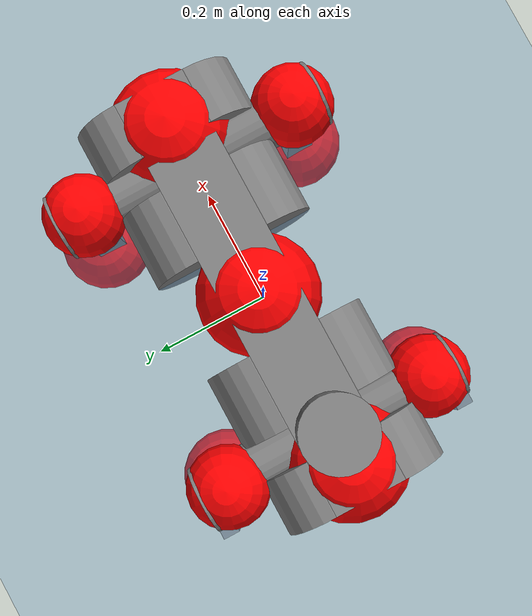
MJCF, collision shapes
<mujoco model="anymal_c">
  <compiler angle="radian" assetdir="assets" balanceinertia="true" inertiafromgeom="false"/>

  <option timestep="0.005" density="1.2" viscosity="2e-05"/>

  <size nkey="1"/>

  <visual>
    <quality shadowsize="8192"/>
    <map shadowclip="0.5"/>
  </visual>

  <default>
    <default class="/">
      <material specular="0" shininess="0.25"/>
      <geom contype="0" conaffinity="0" group="1" solref="-1000 -80"/>
      <site size="0.01 0.005 0.005" group="5"/>
      <general forcelimited="true" forcerange="-80 80" biastype="affine" gainprm="80" biasprm="0 -80 -2"/>
      <default class="anymal_c">
        <joint armature="0.01" damping="0.01" frictionloss="0.1"/>
        <default class="visual">
          <geom type="mesh" group="2"/>
          <default class="visual_zflip"/>
        </default>
        <default class="collision">
          <geom type="cylinder" group="3"/>
          <default class="foot">
            <geom size="0.03 0 0" type="sphere" condim="6" priority="1" friction="0.8 0.02 0.01" solimp="0.015 1 0.03"/>
          </default>
        </default>
      </default>
      <default class="reward_collision_sphere">
        <geom group="5" rgba="1 0 0 1"/>
      </default>
    </default>
  </default>

  <asset>
    <texture type="skybox" colorspace="auto" name="//unnamed_texture_0" builtin="gradient" rgb1="0.95 0.95 0.95" rgb2="0.95 0.95 0.95" width="100" height="600"/>
    <texture type="2d" colorspace="auto" name="texplane" builtin="checker" rgb1="0.345 0.575 0.748" rgb2="0.345 0.575 0.748" markrgb="1 1 1" width="512" height="512"/>
    <texture type="2d" colorspace="linear" name="base" file="base.png"/>
    <texture type="2d" colorspace="linear" name="top_shell" file="top_shell.png"/>
    <texture type="2d" colorspace="linear" name="bottom_shell" file="bottom_shell.png"/>
    <texture type="2d" colorspace="linear" name="remote" file="remote.png"/>
    <texture type="2d" colorspace="linear" name="hatch" file="hatch.png"/>
    <texture type="2d" colorspace="linear" name="handle" file="handle.png"/>
    <texture type="2d" colorspace="linear" name="face" file="face.png"/>
    <texture type="2d" colorspace="linear" name="battery" file="battery.png"/>
    <texture type="2d" colorspace="linear" name="lidar_cage" file="lidar_cage.png"/>
    <texture type="2d" colorspace="linear" name="depth_camera" file="depth_camera.png"/>
    <texture type="2d" colorspace="linear" name="wide_angle_camera" file="wide_angle_camera.png"/>
    <texture type="2d" colorspace="linear" name="lidar" file="lidar.png"/>
    <texture type="2d" colorspace="linear" name="drive" file="drive.png"/>
    <texture type="2d" colorspace="linear" name="hip_l" file="hip_l.png"/>
    <texture type="2d" colorspace="linear" name="shank_l" file="shank_l.png"/>
    <texture type="2d" colorspace="linear" name="foot" file="foot.png"/>
    <texture type="2d" colorspace="linear" name="thigh" file="thigh.png"/>
    <texture type="2d" colorspace="linear" name="shank_r" file="shank_r.png"/>
    <texture type="2d" colorspace="linear" name="hip_r" file="hip_r.png"/>
    <material name="MatPlane" class="/" texture="texplane" texuniform="true" texrepeat="2 2" specular="0.9" shininess="0.5"/>
    <material name="black_plastic" class="/" rgba="0.007 0.007 0.007 1"/>
    <material name="green" class="/" rgba="0.052 0.178 0.033 1"/>
    <material name="red" class="/" rgba="0.178 0.006 0.005 1"/>
    <material name="yellow" class="/" rgba="0.178 0.119 0.006 1"/>
    <material name="lwl" class="/" rgba="0.8 0.8 0.8 1"/>
    <material name="base" class="/" texture="base"/>
    <material name="top_shell" class="/" texture="top_shell"/>
    <material name="bottom_shell" class="/" texture="bottom_shell"/>
    <material name="hip_l" class="/" texture="hip_l"/>
    <material name="thigh" class="/" texture="thigh"/>
    <material name="shank_l" class="/" texture="shank_l"/>
    <material name="foot" class="/" texture="foot"/>
    <material name="hip_r" class="/" texture="hip_r"/>
    <material name="shank" class="/" texture="shank_r"/>
    <material name="hatch" class="/" texture="hatch"/>
    <material name="remote" class="/" texture="remote"/>
    <material name="handle" class="/" texture="handle"/>
    <material name="face" class="/" texture="face"/>
    <material name="depth_camera" class="/" texture="depth_camera"/>
    <material name="wide_angle_camera" class="/" texture="wide_angle_camera"/>
    <material name="battery" class="/" texture="battery"/>
    <material name="lidar_cage" class="/" texture="lidar_cage"/>
    <material name="lidar" class="/" texture="lidar"/>
    <material name="drive" class="/" texture="drive"/>
    <mesh name="base_0" class="/" file="base_0.obj"/>
    <mesh name="base_1" class="/" file="base_1.obj"/>
    <mesh name="base_2" class="/" file="base_2.obj"/>
    <mesh name="base_3" class="/" file="base_3.obj"/>
    <mesh name="base_4" class="/" file="base_4.obj"/>
    <mesh name="base_5" class="/" file="base_5.obj"/>
    <mesh name="top_shell" class="/" file="top_shell.obj"/>
    <mesh name="bottom_shell" class="/" file="bottom_shell.obj"/>
    <mesh name="remote" class="/" file="remote.obj"/>
    <mesh name="handle" class="/" file="handle.obj"/>
    <mesh name="face" class="/" file="face.obj"/>
    <mesh name="wide_angle_camera" class="/" file="wide_angle_camera.obj"/>
    <mesh name="depth_camera" class="/" file="depth_camera.obj"/>
    <mesh name="battery" class="/" file="battery.obj"/>
    <mesh name="lidar_cage" class="/" file="lidar_cage.obj"/>
    <mesh name="lidar" class="/" file="lidar.obj"/>
    <mesh name="drive" class="/" file="drive.obj"/>
    <mesh name="hip_l" class="/" file="hip_l.obj"/>
    <mesh name="thigh" class="/" file="thigh.obj"/>
    <mesh name="shank_l" class="/" file="shank_l.obj"/>
    <mesh name="foot" class="/" file="foot.obj"/>
    <mesh name="hip_r" class="/" file="hip_r.obj"/>
    <mesh name="hatch" class="/" file="hatch.obj"/>
    <mesh name="shank_r" class="/" file="shank_r.obj"/>
  </asset>

  <worldbody>
    <geom name="floor" class="/" size="100 100 0.125" type="plane" group="0" material="MatPlane"/>
    <light name="toplight_shadow" class="/" pos="0 0 5" dir="0.0990148 0.0990148 -0.990148" type="directional" ambient="0.04 0.04 0.04" diffuse="0.55 0.55 0.55" specular="0.12 0.12 0.12"/>
    <light name="toplight_fill" class="/" pos="0 0 5" dir="0.0990148 0.0990148 -0.990148" type="directional" castshadow="false" ambient="0.04 0.04 0.04" diffuse="0.3 0.3 0.3" specular="0.08 0.08 0.08"/>
    <body name="trunk" childclass="anymal_c" pos="0.00817524 0.00412491 0.000558165" quat="0.999996 -0.00232936 0.00063993 0.00143343">
      <inertial pos="0.0106312 -0.00269841 0.0515052" quat="0.498126 0.499908 0.501079 0.500883" mass="14.5226" diaginertia="0.115076 0.464679 0.310108"/>
      <joint name="//unnamed_joint_0" type="free" armature="0" damping="0" frictionloss="0"/>
      <geom name="//unnamed_geom_1" class="visual" material="green" mesh="base_0"/>
      <geom name="//unnamed_geom_2" class="visual" material="yellow" mesh="base_1"/>
      <geom name="//unnamed_geom_3" class="visual" material="red" mesh="base_2"/>
      <geom name="//unnamed_geom_4" class="visual" material="black_plastic" mesh="base_3"/>
      <geom name="//unnamed_geom_5" class="visual" material="lwl" mesh="base_4"/>
      <geom name="//unnamed_geom_6" class="visual" material="base" mesh="base_5"/>
      <geom name="trunk_1" class="collision" size="0.26659 0.0643493 0.0827348" type="box"/>
      <geom name="trunk_2" class="collision" size="0.0827348 0.0666475" pos="0.155508 0.0660622 0" quat="0.707107 0 0.707107 0"/>
      <geom name="trunk_3" class="collision" size="0.0827348 0.0666475" pos="-0.155508 0.0660622 0" quat="0.707107 0 0.707107 0"/>
      <geom name="trunk_4" class="collision" size="0.0827348 0.0666475" pos="0.155508 -0.0660622 0" quat="0.707107 0 0.707107 0"/>
      <geom name="trunk_5" class="collision" size="0.0827348 0.0666475" pos="-0.155508 -0.0660622 0" quat="0.707107 0 0.707107 0"/>
      <geom name="//unnamed_geom_12" class="visual" material="top_shell" mesh="top_shell"/>
      <geom name="//unnamed_geom_13" class="visual" material="bottom_shell" mesh="bottom_shell"/>
      <geom name="//unnamed_geom_14" class="visual" material="remote" mesh="remote"/>
      <geom name="//unnamed_geom_15" class="visual" material="handle" mesh="handle"/>
      <geom name="//unnamed_geom_16" class="visual" pos="0.296359 0 0" quat="1 0 0 0" material="face" mesh="face"/>
      <geom name="trunk_6" class="collision" size="0.0505602 0.0643493 0.0827348" pos="0.335683 0 0" type="box"/>
      <geom name="//unnamed_geom_18" class="collision" size="0.0827348 0.0505602" pos="0.335683 0.0660622 0" quat="0.707107 0 0.707107 0"/>
      <geom name="//unnamed_geom_19" class="collision" size="0.0827348 0.0505602" pos="0.335683 -0.0660622 0" quat="0.707107 0 0.707107 0"/>
      <geom name="//unnamed_geom_20" class="visual" pos="0.330086 0 -0.0350131" quat="0.965926 0 0.258819 0" material="depth_camera" mesh="depth_camera"/>
      <geom name="//unnamed_geom_21" class="visual" pos="0.366785 0 0.0164536" material="wide_angle_camera" mesh="wide_angle_camera"/>
      <geom name="//unnamed_geom_22" class="visual_zflip" pos="-0.296359 0 0" quat="0 0 0 1" material="face" mesh="face"/>
      <geom name="trunk_7" class="collision" size="0.0505602 0.0643493 0.0827348" pos="-0.335683 0 0" quat="0 0 0 1" type="box"/>
      <geom name="//unnamed_geom_24" class="collision" size="0.0827348 0.0505602" pos="-0.335683 -0.0660622 0" quat="0 -0.707107 0 0.707107"/>
      <geom name="//unnamed_geom_25" class="collision" size="0.0827348 0.0505602" pos="-0.335683 0.0660622 0" quat="0 -0.707107 0 0.707107"/>
      <geom name="//unnamed_geom_26" class="visual" pos="-0.330086 0 -0.0350131" quat="0 -0.258819 0 0.965926" material="depth_camera" mesh="depth_camera"/>
      <geom name="//unnamed_geom_27" class="visual_zflip" pos="-0.366785 0 0.0164536" quat="0 0 0 1" material="wide_angle_camera" mesh="wide_angle_camera"/>
      <geom name="//unnamed_geom_28" class="visual" material="battery" mesh="battery"/>
      <geom name="//unnamed_geom_29" class="visual" pos="0 0.0751766 0.0290096" quat="0.683013 -0.183013 0.183013 0.683013" material="depth_camera" mesh="depth_camera"/>
      <geom name="//unnamed_geom_30" class="visual" pos="0 -0.0751766 0.0290096" quat="0.683013 0.183013 0.183013 -0.683013" material="depth_camera" mesh="depth_camera"/>
      <geom name="//unnamed_geom_31" class="visual" pos="-0.260253 0 0.080784" quat="1 0 0 0" material="lidar_cage" mesh="lidar_cage"/>
      <geom name="trunk_8" class="collision" size="0.0643493 0.0551566" pos="-0.260253 0 0.14673"/>
      <geom name="//unnamed_geom_33" class="visual" pos="-0.260253 8.9876e-05 0.156292" quat="0.707107 0 0 -0.707107" material="lidar" mesh="lidar"/>
      <geom name="//unnamed_geom_34" class="visual" pos="0.214422 0.0982048 -2.67992e-09" quat="0.258819 0.965926 0 0" material="drive" mesh="drive"/>
      <geom name="//unnamed_geom_35" class="visual" pos="0.214422 -0.0982048 2.67992e-09" quat="0.258819 -0.965926 0 0" material="drive" mesh="drive"/>
      <geom name="//unnamed_geom_36" class="visual" pos="-0.214422 0.0982048 2.67992e-09" quat="0 0 0.965926 -0.258819" material="drive" mesh="drive"/>
      <geom name="//unnamed_geom_37" class="visual" pos="-0.214422 -0.0982048 -2.67992e-09" quat="0 0 -0.965926 -0.258819" material="drive" mesh="drive"/>
      <geom name="//unnamed_geom_38" class="visual" pos="0.0829377 0 0.0802345" quat="1 0 0 0" material="hatch" mesh="hatch"/>
      <geom name="//unnamed_geom_39" class="reward_collision_sphere" size="0.110313"/>
      <geom name="//unnamed_geom_40" class="reward_collision_sphere" size="0.110313" pos="0.321741 0 0"/>
      <geom name="//unnamed_geom_41" class="reward_collision_sphere" size="0.110313" pos="-0.321741 0 0"/>
      <site name="imu" pos="0.185715 0.00662268 0.0472893" size="0.00919276"/>
      <camera name="track" pos="0 -1.88749 0" quat="0.707107 0.707107 0 0" mode="trackcom"/>
      <camera name="ego_camera" pos="0.321741 0 -0.0439641" quat="-0.5 -0.5 0.5 0.5"/>
      <body name="LF_HIP" pos="0.217601 0.101441 -0.000426115" quat="0.262775 0.964857 3.64707e-06 0.00035349">
        <inertial pos="0.0496036 -0.0122948 -0.00688214" quat="-0.137002 0.70986 -0.13229 0.678106" mass="1.93509" diaginertia="0.000982488 0.00369946 0.00470634"/>
        <joint name="LF_HAA" pos="0 0 0" axis="0.999938 -9.50431e-05 -0.0111556" range="-0.759318 0.618253" armature="0.00692373" damping="0.0241056" frictionloss="0.087783"/>
        <geom name="//unnamed_geom_42" class="visual" pos="0 -0.000157647 2.58935e-05" quat="0.258819 -0.965926 0 0" material="hip_l" mesh="hip_l"/>
        <geom name="//unnamed_geom_43" class="visual" pos="0.0428273 -0.0549616 -0.0328812" quat="0.183013 -0.683013 0.683013 0.183013" material="drive" mesh="drive"/>
        <geom name="//unnamed_geom_44" class="collision" size="0.0459638 0.0643493" pos="0.0428273 -0.011287 -0.0075893" quat="-0.353553 -0.612372 0.612372 -0.353553"/>
        <body name="LF_THIGH" pos="0.0457597 -0.0661683 -0.0476741" quat="0.182845 -0.683534 0.682736 0.182265">
          <inertial pos="0.0139237 0.00140817 -0.276981" quat="0.993598 -0.0138236 -0.0791776 0.0793865" mass="2.36966" diaginertia="0.00553578 0.0227117 0.00678677"/>
          <joint name="LF_HFE" pos="0 0 0" axis="0.999971 0.00372727 0.00668589" range="-3.02696 3.03952" armature="0.00688425" damping="0.0474015" frictionloss="0.0839718"/>
          <geom name="//unnamed_geom_45" class="visual" pos="-0.00455155 -7.17217e-06 0" quat="0.707107 0 0 -0.707107" material="thigh" mesh="thigh"/>
          <geom name="//unnamed_geom_46" class="collision" size="0.0597529 0.036771" pos="0.0285992 0 0" quat="0.5 0.5 -0.5 -0.5"/>
          <geom name="//unnamed_geom_47" class="collision" size="0.0344729 0.0275783 0.129907" pos="0.0214494 0 -0.155319" quat="0.707107 0 0 -0.707107" type="box"/>
          <geom name="//unnamed_geom_48" class="visual" pos="0.0717125 0 -0.313244" quat="1 0 0 0" material="drive" mesh="drive"/>
          <geom name="//unnamed_geom_49" class="collision" size="0.0459638 0.0643493" pos="0.0216639 0 -0.313244" quat="0.707107 0 0.707107 0"/>
          <geom name="//unnamed_geom_50" class="reward_collision_sphere" size="0.0735421" pos="0.0178745 0 0"/>
          <body name="LF_SHANK" pos="0.0699033 0.00115021 -0.312306" quat="0.999998 0.00139449 0.000493994 -0.0009513">
            <inertial pos="0.00111713 -0.0598593 -0.0838925" quat="0.991404 -0.129878 0.0157887 -6.73018e-05" mass="0.461145" diaginertia="0.00189731 0.00676237 0.00187954"/>
            <joint name="LF_KFE" pos="0 0 0" axis="0.999978 -0.00312815 0.00578729" range="-3.18138 3.26106" armature="0.0103676" damping="0.00834936" frictionloss="0.0831875"/>
            <geom name="//unnamed_geom_51" class="visual" pos="-0.00148416 -0.00791361 0" quat="0.707107 0 0 -0.707107" material="shank_l" mesh="shank_l"/>
            <geom name="LF_kfe_act" class="collision" size="0.0551566 0.0183855" pos="0.0142996 0 0" quat="0.5 0.5 -0.5 -0.5"/>
            <geom name="//unnamed_geom_53" class="collision" size="0.0528575 0.0310256 0.0174662" pos="0.0142996 -0.0542644 0" quat="0.5 0.5 -0.5 -0.5" type="box"/>
            <geom name="//unnamed_geom_54" class="visual" pos="0.00933085 -0.0855527 -0.371464" quat="0.382683 0 0 -0.92388" material="foot" mesh="foot"/>
            <geom name="LF_calf" class="collision" size="0.0160873 0.12985" pos="0.00933049 -0.0830024 -0.185732" quat="0.707107 0 0 -0.707107"/>
            <geom name="LF_foot" class="foot" size="0.0295888" pos="0.00933049 -0.0830024 -0.346734" quat="0.707107 0 0 -0.707107"/>
            <geom name="//unnamed_geom_57" class="reward_collision_sphere" size="0.0919276" pos="-0.035749 0 0"/>
            <geom name="//unnamed_geom_58" class="reward_collision_sphere" size="0.0459638" pos="0.00933049 -0.0830024 -0.346734"/>
            <site name="LF_foot" class="foot" pos="0.00933049 -0.0830024 -0.346734" quat="0.707107 0 0 -0.707107" size="0.00919276"/>
          </body>
        </body>
      </body>
      <body name="RF_HIP" pos="0.214716 -0.104362 -0.00191501" quat="0.259493 -0.965745 -0.000374624 7.28552e-05">
        <inertial pos="0.0352552 0.0153851 -0.0086229" quat="0.138893 0.677304 0.120029 0.712433" mass="1.78972" diaginertia="0.00101588 0.00344086 0.00521681"/>
        <joint name="RF_HAA" pos="0 0 0" axis="0.999996 0.000272538 -0.00274584" range="-0.541243 0.748072" armature="0.0130655" damping="0.00917694" frictionloss="0.0534474"/>
        <geom name="//unnamed_geom_59" class="visual" pos="0 0.000157646 2.58934e-05" quat="0.258819 0.965926 0 0" material="hip_r" mesh="hip_r"/>
        <geom name="//unnamed_geom_60" class="visual" pos="0.0428273 0.0549616 -0.0328812" quat="0.183013 0.683013 0.683013 -0.183013" material="drive" mesh="drive"/>
        <geom name="//unnamed_geom_61" class="collision" size="0.0459638 0.0643493" pos="0.0428273 0.011287 -0.0075893" quat="-0.353553 0.612372 0.612372 0.353553"/>
        <body name="RF_THIGH" pos="0.0459381 0.067965 -0.0528248" quat="0.184261 0.681677 0.683071 -0.186492">
          <inertial pos="0.0264482 0.00891253 -0.270671" quat="0.993008 0.0019931 -0.0836838 0.0832367" mass="2.66821" diaginertia="0.00571678 0.0227454 0.00719587"/>
          <joint name="RF_HFE" pos="0 0 0" axis="0.999933 0.00047934 -0.0115854" stiffness="0.0102566" range="-3.15064 3.14822" armature="0.00918069" damping="0.0113087" frictionloss="0.0875353"/>
          <geom name="//unnamed_geom_62" class="visual" pos="-0.00455155 -7.17217e-06 0" quat="0.707107 0 0 -0.707107" material="thigh" mesh="thigh"/>
          <geom name="//unnamed_geom_63" class="collision" size="0.0597529 0.036771" pos="0.0285992 0 0" quat="0.5 0.5 0.5 0.5"/>
          <geom name="//unnamed_geom_64" class="collision" size="0.0344729 0.0275783 0.129907" pos="0.0214494 0 -0.155319" quat="0.707107 0 0 0.707107" type="box"/>
          <geom name="//unnamed_geom_65" class="visual" pos="0.0717125 0 -0.313244" quat="1 0 0 0" material="drive" mesh="drive"/>
          <geom name="//unnamed_geom_66" class="collision" size="0.0459638 0.0643493" pos="0.0216639 0 -0.313244" quat="0.707107 0 0.707107 0"/>
          <geom name="//unnamed_geom_67" class="reward_collision_sphere" size="0.0735421" pos="0.0178745 0 0"/>
          <body name="RF_SHANK" pos="0.0678135 0.000155087 -0.312594" quat="1 1.45533e-05 5.19591e-05 1.78247e-05">
            <inertial pos="0.00190441 0.0582091 -0.089201" quat="0.991982 0.124426 -0.00273546 0.0219524" mass="0.428025" diaginertia="0.00162329 0.00676748 0.0017029"/>
            <joint name="RF_KFE" pos="0 0 0" axis="0.999632 -0.0197483 0.0185888" stiffness="0.0125512" range="-3.10442 3.09877" armature="0.0101563" damping="0" frictionloss="0.0962482"/>
            <geom name="//unnamed_geom_68" class="visual" pos="-0.00148415 0.0079136 0" quat="0.707107 0 0 0.707107" material="shank" mesh="shank_r"/>
            <geom name="RF_kfe_act" class="collision" size="0.0551566 0.0183855" pos="0.0142996 0 0" quat="0.5 0.5 0.5 0.5"/>
            <geom name="//unnamed_geom_70" class="collision" size="0.0528575 0.0310256 0.0174662" pos="0.0142996 0.0542644 0" quat="0.5 0.5 0.5 0.5" type="box"/>
            <geom name="//unnamed_geom_71" class="visual" pos="0.00933013 0.0855527 -0.371464" quat="0.382683 0 0 0.92388" material="foot" mesh="foot"/>
            <geom name="RF_calf" class="collision" size="0.0160873 0.12985" pos="0.00933049 0.0830024 -0.185732" quat="0.707107 0 0 0.707107"/>
            <geom name="RF_foot" class="foot" size="0.0328836" pos="0.00933049 0.0830024 -0.346734" quat="0.707107 0 0 0.707107"/>
            <geom name="//unnamed_geom_74" class="reward_collision_sphere" size="0.0919276" pos="-0.035749 0 0"/>
            <geom name="//unnamed_geom_75" class="reward_collision_sphere" size="0.0459638" pos="0.00933049 0.0830024 -0.346734"/>
            <site name="RF_foot" class="foot" pos="0.00933049 0.0830024 -0.346734" quat="0.707107 0 0 0.707107" size="0.00919276"/>
          </body>
        </body>
      </body>
      <body name="LH_HIP" pos="-0.21524 0.100312 -0.00259478" quat="-0.00245182 -0.00106767 0.964843 -0.262814">
        <inertial pos="0.0323616 0.0129109 -0.0071317" quat="0.135902 0.678845 0.128674 0.710031" mass="2.24396" diaginertia="0.00112209 0.0035546 0.00534231"/>
        <joint name="LH_HAA" pos="0 0 0" axis="0.999987 0.00509061 -0.000214848" range="-0.52472 0.76249" armature="0.00904071" damping="0.00487383" frictionloss="0.0897631"/>
        <geom name="//unnamed_geom_76" class="visual" pos="0 0.000157646 2.58934e-05" quat="-0.258819 -0.965926 0 0" material="hip_r" mesh="hip_r"/>
        <geom name="//unnamed_geom_77" class="visual" pos="0.0428273 0.0549616 -0.0328812" quat="0.183013 0.683013 0.683013 -0.183013" material="drive" mesh="drive"/>
        <geom name="//unnamed_geom_78" class="collision" size="0.0459638 0.0643493" pos="0.0428273 0.011287 -0.0075893" quat="-0.353553 0.612372 0.612372 0.353553"/>
        <body name="LH_THIGH" pos="0.0503237 0.0675312 -0.0508176" quat="0.179238 0.683543 0.683296 -0.183707">
          <inertial pos="0.0208883 -0.00159625 -0.27151" quat="0.99515 -0.0172175 -0.0506639 0.0825438" mass="2.5555" diaginertia="0.00567233 0.0237519 0.00669287"/>
          <joint name="LH_HFE" pos="0 0 0" axis="0.999856 -0.00200563 -0.0168219" stiffness="0.0017888" range="-3.18034 3.11822" armature="0.0107141" damping="0.0473128" frictionloss="0.0924471"/>
          <geom name="//unnamed_geom_79" class="visual" pos="-0.00455155 -7.17217e-06 0" quat="0.707107 0 0 -0.707107" material="thigh" mesh="thigh"/>
          <geom name="//unnamed_geom_80" class="collision" size="0.0597529 0.036771" pos="0.0285992 0 0" quat="0.5 0.5 -0.5 -0.5"/>
          <geom name="//unnamed_geom_81" class="collision" size="0.0344729 0.0275783 0.129907" pos="0.0214494 0 -0.155319" quat="0.707107 0 0 -0.707107" type="box"/>
          <geom name="//unnamed_geom_82" class="visual" pos="0.0717125 0 -0.313244" quat="1 0 0 0" material="drive" mesh="drive"/>
          <geom name="//unnamed_geom_83" class="collision" size="0.0459638 0.0643493" pos="0.0216639 0 -0.313244" quat="0.707107 0 0.707107 0"/>
          <geom name="//unnamed_geom_84" class="reward_collision_sphere" size="0.0735421" pos="0.0178745 0 0"/>
          <body name="LH_SHANK" pos="0.0721753 0.00063774 -0.31502" quat="1 -1.19152e-05 6.12369e-05 -4.64007e-05">
            <inertial pos="0.00355107 0.0578818 -0.0912563" quat="0.993037 0.115232 -0.0030496 0.0242693" mass="0.453096" diaginertia="0.00190764 0.00711426 0.00176415"/>
            <joint name="LH_KFE" pos="0 0 0" axis="0.999997 -0.000589569 -0.00220385" range="-3.16061 3.13555" armature="0.0099911" damping="0.0410741" frictionloss="0.0849786"/>
            <geom name="//unnamed_geom_85" class="visual" pos="-0.00148415 0.0079136 0" quat="-0.707107 0 0 -0.707107" material="shank" mesh="shank_r"/>
            <geom name="LH_kfe_act" class="collision" size="0.0551566 0.0183855" pos="0.0142996 0 0" quat="0.5 0.5 -0.5 -0.5"/>
            <geom name="//unnamed_geom_87" class="collision" size="0.0528575 0.0310256 0.0174662" pos="0.0142996 0.0542644 0" quat="0.5 0.5 -0.5 -0.5" type="box"/>
            <geom name="//unnamed_geom_88" class="visual" pos="0.00933013 0.0855527 -0.371464" quat="-0.382683 0 0 -0.92388" material="foot" mesh="foot"/>
            <geom name="LH_calf" class="collision" size="0.0160873 0.12985" pos="0.00933049 0.0830024 -0.185732" quat="0.707107 0 0 -0.707107"/>
            <geom name="LH_foot" class="foot" size="0.0235995" pos="0.00933049 0.0830024 -0.346734" quat="0.707107 0 0 -0.707107"/>
            <geom name="//unnamed_geom_91" class="reward_collision_sphere" size="0.0919276" pos="-0.035749 0 0"/>
            <geom name="//unnamed_geom_92" class="reward_collision_sphere" size="0.0459638" pos="0.00933049 0.0830024 -0.346734"/>
            <site name="LH_foot" class="foot" pos="0.00933049 0.0830024 -0.346734" quat="0.707107 0 0 -0.707107" size="0.00919276"/>
          </body>
        </body>
      </body>
      <body name="RH_HIP" pos="-0.217239 -0.0903479 -0.00570159" quat="0.000159971 0.00123622 -0.965485 -0.260454">
        <inertial pos="0.040836 -0.0198123 -0.009097" quat="-0.105916 0.691696 -0.141047 0.700317" mass="2.11377" diaginertia="0.00104029 0.00347284 0.00523343"/>
        <joint name="RH_HAA" pos="0 0 0" axis="0.999979 -0.00477948 -0.00441432" range="-0.688924 0.511923" armature="0.00514434" damping="0" frictionloss="0.121787"/>
        <geom name="//unnamed_geom_93" class="visual" pos="0 -0.000157647 2.58935e-05" quat="-0.258819 0.965926 0 0" material="hip_l" mesh="hip_l"/>
        <geom name="//unnamed_geom_94" class="visual" pos="0.0428273 -0.0549616 -0.0328812" quat="-0.183013 0.683013 -0.683013 -0.183013" material="drive" mesh="drive"/>
        <geom name="//unnamed_geom_95" class="collision" size="0.0459638 0.0643493" pos="0.0428273 -0.011287 -0.0075893" quat="0.353553 0.612372 -0.612372 0.353553"/>
        <body name="RH_THIGH" pos="0.0457261 -0.0705382 -0.0400018" quat="-0.182854 0.68264 -0.683382 -0.183184">
          <inertial pos="0.0231887 0.00162428 -0.267792" quat="0.993206 -0.00386486 -0.0804059 0.0840393" mass="2.44331" diaginertia="0.005736 0.0223491 0.00734449"/>
          <joint name="RH_HFE" pos="0 0 0" axis="0.999969 0.00772646 0.00135307" stiffness="0.0191076" range="-2.99578 3.08065" armature="0.00817809" damping="0" frictionloss="0.0882698"/>
          <geom name="//unnamed_geom_96" class="visual" pos="-0.00455155 -7.17217e-06 0" quat="0.707107 0 0 -0.707107" material="thigh" mesh="thigh"/>
          <geom name="//unnamed_geom_97" class="collision" size="0.0597529 0.036771" pos="0.0285992 0 0" quat="0.5 0.5 0.5 0.5"/>
          <geom name="//unnamed_geom_98" class="collision" size="0.0344729 0.0275783 0.129907" pos="0.0214494 0 -0.155319" quat="0.707107 0 0 0.707107" type="box"/>
          <geom name="//unnamed_geom_99" class="visual" pos="0.0717125 0 -0.313244" quat="1 0 0 0" material="drive" mesh="drive"/>
          <geom name="//unnamed_geom_100" class="collision" size="0.0459638 0.0643493" pos="0.0216639 0 -0.313244" quat="0.707107 0 0.707107 0"/>
          <geom name="//unnamed_geom_101" class="reward_collision_sphere" size="0.0735421" pos="0.0178745 0 0"/>
          <body name="RH_SHANK" pos="0.0819077 -0.00476319 -0.311205" quat="1 0.000412808 -0.000438329 -0.000518693">
            <inertial pos="-0.00555955 -0.0580526 -0.0910415" quat="0.992609 -0.118397 -0.00111882 -0.0266137" mass="0.448603" diaginertia="0.0020401 0.0080804 0.00189469"/>
            <joint name="RH_KFE" pos="0 0 0" axis="0.999961 -0.00820406 -0.00314967" range="-3.22844 2.94451" armature="0.0118164" damping="0.0158908" frictionloss="0.0949926"/>
            <geom name="//unnamed_geom_102" class="visual" pos="-0.00148416 -0.00791361 0" quat="0.707107 0 0 -0.707107" material="shank_l" mesh="shank_l"/>
            <geom name="RH_kfe_act" class="collision" size="0.0551566 0.0183855" pos="0.0142996 0 0" quat="0.5 0.5 0.5 0.5"/>
            <geom name="//unnamed_geom_104" class="collision" size="0.0528575 0.0310256 0.0174662" pos="0.0142996 -0.0542644 0" quat="0.5 0.5 0.5 0.5" type="box"/>
            <geom name="//unnamed_geom_105" class="visual" pos="0.00933085 -0.0855527 -0.371464" quat="0.382683 0 0 -0.92388" material="foot" mesh="foot"/>
            <geom name="RH_calf" class="collision" size="0.0160873 0.12985" pos="0.00933049 -0.0830024 -0.185732" quat="0.707107 0 0 0.707107"/>
            <geom name="RH_foot" class="foot" size="0.0283975" pos="0.00933049 -0.0830024 -0.346734" quat="0.707107 0 0 0.707107"/>
            <geom name="//unnamed_geom_108" class="reward_collision_sphere" size="0.0919276" pos="-0.035749 0 0"/>
            <geom name="//unnamed_geom_109" class="reward_collision_sphere" size="0.0459638" pos="0.00933049 -0.0830024 -0.346734"/>
            <site name="RH_foot" class="foot" pos="0.00933049 -0.0830024 -0.346734" quat="0.707107 0 0 0.707107" size="0.00919276"/>
          </body>
        </body>
      </body>
    </body>
  </worldbody>

  <contact>
    <pair class="/" geom1="floor" geom2="LF_foot" name="//unnamed_contact_0"/>
    <pair class="/" geom1="floor" geom2="RF_foot" name="//unnamed_contact_1"/>
    <pair class="/" geom1="floor" geom2="LH_foot" name="//unnamed_contact_2"/>
    <pair class="/" geom1="floor" geom2="RH_foot" name="//unnamed_contact_3"/>
  </contact>

  <actuator>
    <general name="LF_HAA" class="/" joint="LF_HAA" forcerange="-71.3586 71.3586" gainprm="73.7158" biasprm="0 -73.7158 -2.09988"/>
    <general name="LF_HFE" class="/" joint="LF_HFE" forcerange="-79.1809 79.1809" gainprm="73.7158" biasprm="0 -73.7158 -2.09988"/>
    <general name="LF_KFE" class="/" joint="LF_KFE" forcerange="-71.6347 71.6347" gainprm="73.7158" biasprm="0 -73.7158 -2.09988"/>
    <general name="RF_HAA" class="/" joint="RF_HAA" forcerange="-48.2678 48.2678" gainprm="73.7158" biasprm="0 -73.7158 -2.09988"/>
    <general name="RF_HFE" class="/" joint="RF_HFE" forcerange="-77.6867 77.6867" gainprm="73.7158" biasprm="0 -73.7158 -2.09988"/>
    <general name="RF_KFE" class="/" joint="RF_KFE" forcerange="-86.6387 86.6387" gainprm="73.7158" biasprm="0 -73.7158 -2.09988"/>
    <general name="LH_HAA" class="/" joint="LH_HAA" forcerange="-69.5486 69.5486" gainprm="73.7158" biasprm="0 -73.7158 -2.09988"/>
    <general name="LH_HFE" class="/" joint="LH_HFE" forcerange="-69.5343 69.5343" gainprm="73.7158" biasprm="0 -73.7158 -2.09988"/>
    <general name="LH_KFE" class="/" joint="LH_KFE" forcerange="-80.7717 80.7717" gainprm="73.7158" biasprm="0 -73.7158 -2.09988"/>
    <general name="RH_HAA" class="/" joint="RH_HAA" forcerange="-79.9444 79.9444" gainprm="73.7158" biasprm="0 -73.7158 -2.09988"/>
    <general name="RH_HFE" class="/" joint="RH_HFE" forcerange="-73.2438 73.2438" gainprm="73.7158" biasprm="0 -73.7158 -2.09988"/>
    <general name="RH_KFE" class="/" joint="RH_KFE" forcerange="-53.702 53.702" gainprm="73.7158" biasprm="0 -73.7158 -2.09988"/>
  </actuator>

  <sensor>
    <gyro site="imu" name="imu_angular_velocity"/>
    <velocimeter site="imu" name="imu_linear_velocity"/>
    <framelinvel objtype="site" objname="LF_foot" name="LF_foot_global_linear_velocity"/>
    <framelinvel objtype="site" objname="RF_foot" name="RF_foot_global_linear_velocity"/>
    <framelinvel objtype="site" objname="LH_foot" name="LH_foot_global_linear_velocity"/>
    <framelinvel objtype="site" objname="RH_foot" name="RH_foot_global_linear_velocity"/>
  </sensor>

  <keyframe>
    <key name="home" qpos="0 0 0.55 1 0 0 0 0 0.4 -0.8 0 -0.4 0.8 0 -0.4 0.8 0 0.4 -0.8"/>
  </keyframe>
</mujoco>
